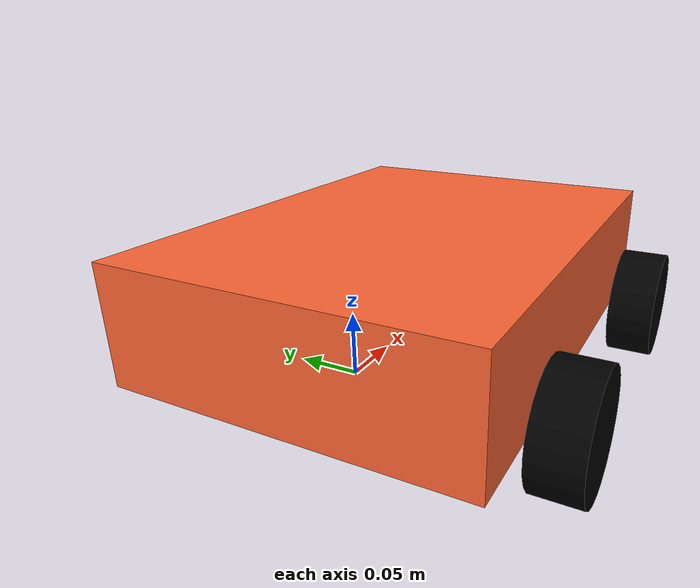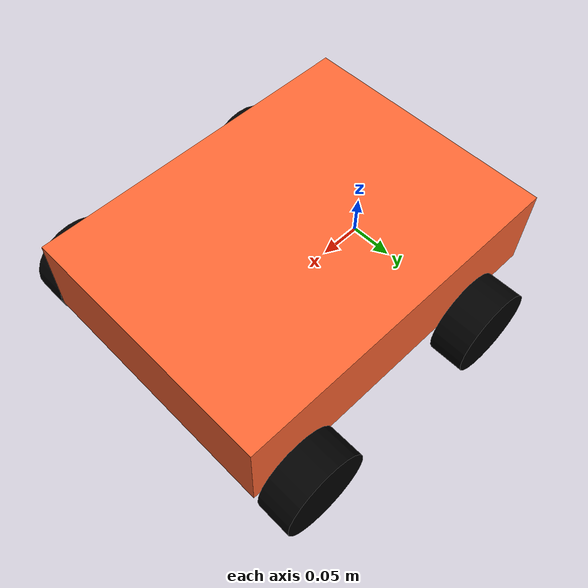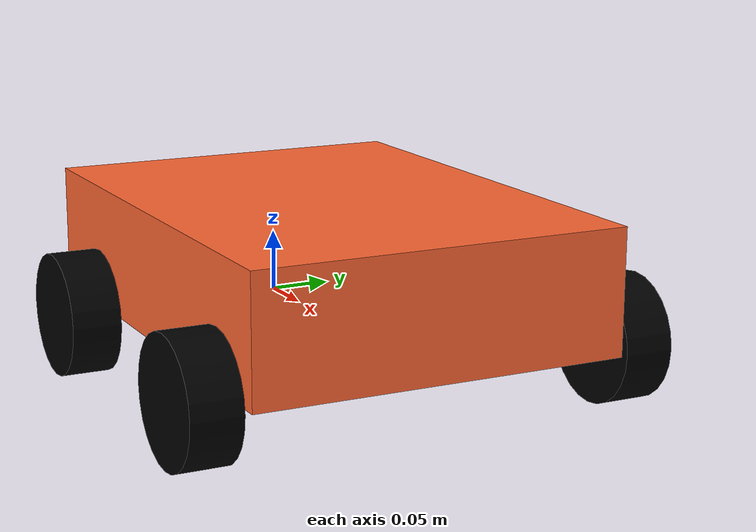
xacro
<?xml version="1.0"?>
<robot xmlns:xacro="http://www.ros.org/wiki/xacro" >

    <xacro:include filename="inertial_macros.xacro" />

    <material name="white">
        <color rgba="1 1 1 1"/>
    </material>

    <material name="blue">
        <color rgba="1 0.3 0.1 1"/>
    </material>

    <material name="blurrywood">
        <color rgba="1 0.4 0.2 1"/>
    </material>

    <material name="black">
        <color rgba="0 0 0 1"/>
    </material>

    <material name="orange">
        <color rgba="1 0.3 0.1 1"/>
    </material>

    <!--BASE LINK-->

    <link name="base_link">

    </link>

    <!-- BASE FOOTPRINT -->

    <joint name="base_footprint_joint" type="fixed">
        <parent link="base_link"/>
        <child link="base_footprint"/>
        <origin xyz="0 0 0" rpy="0 0 0"/>
    </joint>

    <link name="base_footprint">
    </link>

    <!--CHASSIS LINK-->

    <joint name="chassis_joint" type="fixed">
        <parent link="base_link"/>
        <child link="chassis"/>
        <origin xyz="-0.1 0 0"/>
    </joint>

    <link name="chassis">
        <visual>
            <origin xyz="0.2 0 0.05" />
            <geometry>
                <box size="0.4 0.3 0.1" />
            </geometry>oo
            <material name="blurrywood" />
        </visual>
        <collision>
            <origin xyz="0.2 0 0.05" />
            <geometry>
                <box size="0.4 0.3 0.1" />
            </geometry>
        </collision>
        <xacro:inertial_box mass=".5" x="0.4" y="0.3" z="0.1">
            <origin xyz="0.2 0 0.05" rpy="0 0 0"/>
        </xacro:inertial_box>
    </link>

    <gazebo reference="chassis">
        <material>
            Gazebo/Orange
        </material>
    </gazebo>

    <!-- LEFT WHEEL LINK-->

    <joint name="left_wheel_joint" type="continuous">
        <parent link="base_link" />
        <child link="left_wheel" />
        <origin xyz="0 0.175 0" rpy="-${pi/2} 0 0" />
        <axis xyz="0 0 1"/>
    </joint>

    <link name="left_wheel">
        <visual>
            <geometry>
                <cylinder radius="0.05" length="0.04" />
            </geometry>
            <material name="black" />
        </visual>
        <collision>
            <geometry>
                <sphere radius="0.05" />
            </geometry>
        </collision>
        <xacro:inertial_cylinder mass="0.05" length="0.04" radius="0.05">
            <origin xyz="0 0 0" rpy="0 0 0"/>
        </xacro:inertial_cylinder>
    </link>

    <gazebo reference="left_wheel">
        <material>
            Gazebo/Black
        </material>
        <mu1 value="0.2"/>
        <mu2 value="0.2"/>
    </gazebo>

    <!-- RIGHT WHEEL LINK-->

    <joint name="right_wheel_joint" type="continuous">
        <parent link="base_link" />
        <child link="right_wheel" />
        <origin xyz="0 -0.175 0" rpy="${pi/2} 0 0" />
        <axis xyz="0 0 -1"/>
    </joint>

    <link name="right_wheel">
        <visual>
            <geometry>
                <cylinder radius="0.05" length="0.04" />
            </geometry>
            <material name="black" />
        </visual>
        <collision>
            <geometry>
                <sphere radius="0.05" />
            </geometry>
        </collision>
        <xacro:inertial_cylinder mass="0.05" length="0.04" radius="0.05">
            <origin xyz="0 0 0" rpy="0 0 0"/>
        </xacro:inertial_cylinder>
    </link>

    <gazebo reference="right_wheel">
        <material>
            Gazebo/Black
        </material>
        <mu1 value="0.2"/>
        <mu2 value="0.2"/>
    </gazebo>

    <!-- LEFT CASTER WHEELS LINK-->

    <joint name="left_caster_wheel_joint" type="fixed">
        <parent link="chassis" />
        <child link="left_caster_wheel" />
        <origin xyz="0.35 0.175 0" rpy="-${pi/2} 0 0"/>
        <axis xyz="0 0 1"/>
    </joint>

    <link name="left_caster_wheel">
        <visual>
            <geometry>
                <cylinder radius="0.05" length="0.04"/>
            </geometry>
            <material name="black" />
        </visual>
        <collision>
            <geometry>
                <cylinder radius="0.05" length="0.04"/>
            </geometry>
        </collision>
        <xacro:inertial_cylinder mass="0.05" length="0.04" radius="0.05">
            <origin xyz="0 0 0" rpy="0 0 0"/>
        </xacro:inertial_cylinder>
    </link>

    <gazebo reference="left_caster_wheel">
        <material>
            Gazebo/Black
        </material>
        <mu1 value="0.01" />
        <mu2 value="0.01" />
    </gazebo>

        <!-- RIGHT CASTER WHEELS LINK-->

        <joint name="right_caster_wheel_joint" type="fixed">
            <parent link="chassis" />
            <child link="right_caster_wheel" />
            <origin xyz="0.35 -0.175 0" rpy="${pi/2} 0 0"/>
            <axis xyz="0 0 -1"/>
        </joint>

        <link name="right_caster_wheel">
            <visual>
                <geometry>
                    <cylinder radius="0.05" length="0.04"/>
                </geometry>
                <material name="black" />
            </visual>
            <collision>
                <geometry>
                    <cylinder radius="0.05" length="0.04"/>
                </geometry>
            </collision>
            <xacro:inertial_cylinder mass="0.05" length="0.04" radius="0.05">
                <origin xyz="0 0 0" rpy="0 0 0"/>
            </xacro:inertial_cylinder>
        </link>

        <gazebo reference="right_caster_wheel">
            <material>
                Gazebo/Black
            </material>
            <mu1 value="0.01" />
            <mu2 value="0.01" />
        </gazebo>

</robot>
